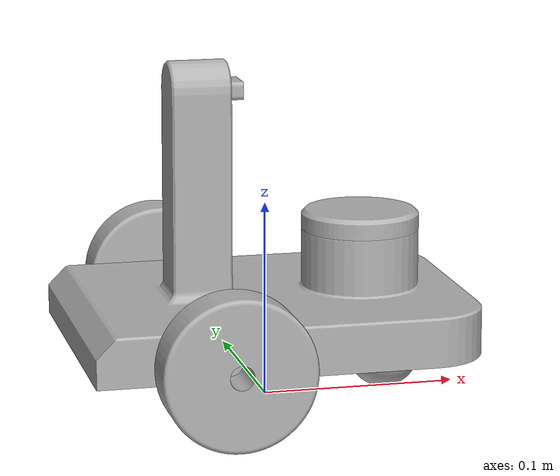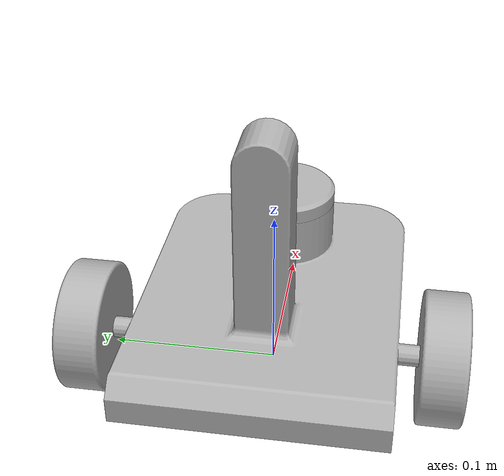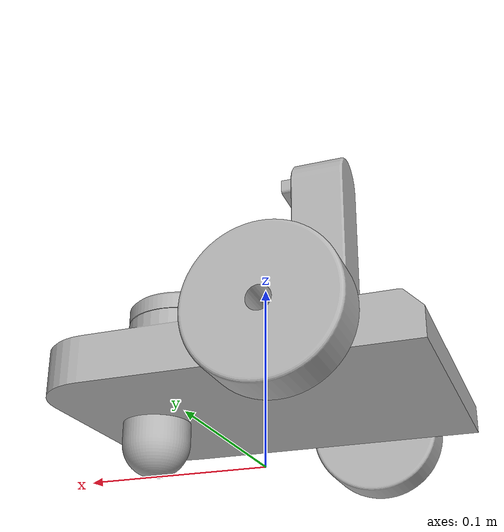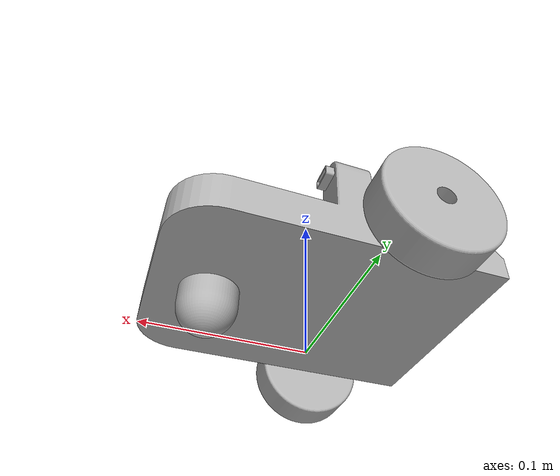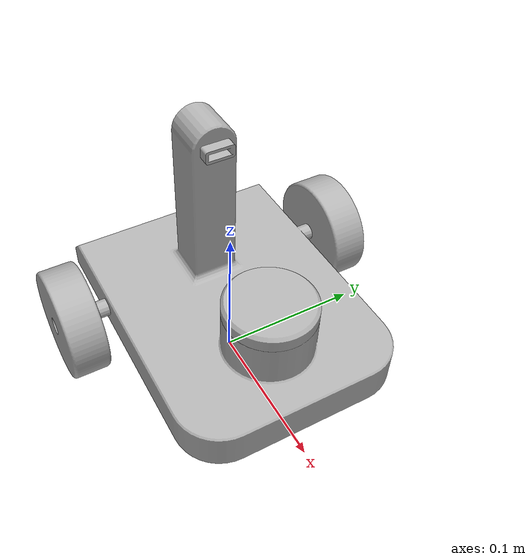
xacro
<?xml version="1.0" ?>
<robot name="eic_bot" xmlns:xacro="http://www.ros.org/wiki/xacro">

<xacro:include filename="$(find eic_bot_description)/urdf/materials.xacro" />
<xacro:include filename="$(find eic_bot_description)/urdf/eic_bot.trans" />
<xacro:include filename="$(find eic_bot_description)/urdf/eic_bot.gazebo" />
<link name="base_link">
  <inertial>
    <origin xyz="0.000294157102495685 2.947535498460932e-17 0.052485340668322555" rpy="0 0 0"/>
    <mass value="0.9812241966714506"/>
    <inertia ixx="0.002167" iyy="0.003572" izz="0.004353" ixy="-0.0" iyz="0.0" ixz="0.000149"/>
  </inertial>
  <visual>
    <origin xyz="0 0 0" rpy="0 0 0"/>
    <geometry>
      <mesh filename="package://eic_bot_description/meshes/base_link.stl" scale="0.001 0.001 0.001"/>
    </geometry>
    <material name="silver"/>
  </visual>
  <collision>
    <origin xyz="0 0 0" rpy="0 0 0"/>
    <geometry>
      <mesh filename="package://eic_bot_description/meshes/base_link.stl" scale="0.001 0.001 0.001"/>
    </geometry>
  </collision>
</link>

<link name="r_wheel_1">
  <inertial>
    <origin xyz="-1.6542323066914832e-14 -0.012499999999999997 6.938893903907228e-18" rpy="0 0 0"/>
    <mass value="0.09971412326008154"/>
    <inertia ixx="4.1e-05" iyy="7.2e-05" izz="4.1e-05" ixy="-0.0" iyz="0.0" ixz="0.0"/>
  </inertial>
  <visual>
    <origin xyz="0.037 0.087 -0.042" rpy="0 0 0"/>
    <geometry>
      <mesh filename="package://eic_bot_description/meshes/r_wheel_1.stl" scale="0.001 0.001 0.001"/>
    </geometry>
    <material name="silver"/>
  </visual>
  <collision>
    <origin xyz="0.037 0.087 -0.042" rpy="0 0 0"/>
    <geometry>
      <mesh filename="package://eic_bot_description/meshes/r_wheel_1.stl" scale="0.001 0.001 0.001"/>
    </geometry>
  </collision>
</link>

<link name="l_wheel__1">
  <inertial>
    <origin xyz="-1.6542323066914832e-14 0.012500000000000011 6.938893903907228e-18" rpy="0 0 0"/>
    <mass value="0.09971412326008154"/>
    <inertia ixx="4.1e-05" iyy="7.2e-05" izz="4.1e-05" ixy="-0.0" iyz="0.0" ixz="0.0"/>
  </inertial>
  <visual>
    <origin xyz="0.037 -0.087 -0.042" rpy="0 0 0"/>
    <geometry>
      <mesh filename="package://eic_bot_description/meshes/l_wheel__1.stl" scale="0.001 0.001 0.001"/>
    </geometry>
    <material name="silver"/>
  </visual>
  <collision>
    <origin xyz="0.037 -0.087 -0.042" rpy="0 0 0"/>
    <geometry>
      <mesh filename="package://eic_bot_description/meshes/l_wheel__1.stl" scale="0.001 0.001 0.001"/>
    </geometry>
  </collision>
</link>

<link name="cam_1">
  <inertial>
    <origin xyz="0.00347757201957773 6.290535465421874e-18 0.0" rpy="0 0 0"/>
    <mass value="0.0009318725889462407"/>
    <inertia ixx="0.0" iyy="0.0" izz="0.0" ixy="0.0" iyz="0.0" ixz="0.0"/>
  </inertial>
  <visual>
    <origin xyz="0.02 -0.0 -0.1595" rpy="0 0 0"/>
    <geometry>
      <mesh filename="package://eic_bot_description/meshes/cam_1.stl" scale="0.001 0.001 0.001"/>
    </geometry>
    <material name="silver"/>
  </visual>
  <collision>
    <origin xyz="0.02 -0.0 -0.1595" rpy="0 0 0"/>
    <geometry>
      <mesh filename="package://eic_bot_description/meshes/cam_1.stl" scale="0.001 0.001 0.001"/>
    </geometry>
  </collision>
</link>

<link name="lidar_1">
  <inertial>
    <origin xyz="6.938893903907228e-18 5.092452206886448e-18 0.00494280996697688" rpy="0 0 0"/>
    <mass value="0.036835550854458755"/>
    <inertia ixx="8e-06" iyy="8e-06" izz="1.6e-05" ixy="0.0" iyz="-0.0" ixz="0.0"/>
  </inertial>
  <visual>
    <origin xyz="-0.05 -0.0 -0.0845" rpy="0 0 0"/>
    <geometry>
      <mesh filename="package://eic_bot_description/meshes/lidar_1.stl" scale="0.001 0.001 0.001"/>
    </geometry>
    <material name="silver"/>
  </visual>
  <collision>
    <origin xyz="-0.05 -0.0 -0.0845" rpy="0 0 0"/>
    <geometry>
      <mesh filename="package://eic_bot_description/meshes/lidar_1.stl" scale="0.001 0.001 0.001"/>
    </geometry>
  </collision>
</link>

<link name="caster_1">
  <inertial>
    <origin xyz="-0.037000000000000005 -8.496525080399244e-18 -0.012074107142857143" rpy="0 0 0"/>
    <mass value="0.02659352945276006"/>
    <inertia ixx="3e-06" iyy="3e-06" izz="4e-06" ixy="-0.0" iyz="-0.0" ixz="0.0"/>
  </inertial>
  <visual>
    <origin xyz="-0.1 -0.0 -0.0295" rpy="0 0 0"/>
    <geometry>
      <mesh filename="package://eic_bot_description/meshes/caster_1.stl" scale="0.001 0.001 0.001"/>
    </geometry>
    <material name="silver"/>
  </visual>
  <collision>
    <origin xyz="-0.1 -0.0 -0.0295" rpy="0 0 0"/>
    <geometry>
      <mesh filename="package://eic_bot_description/meshes/caster_1.stl" scale="0.001 0.001 0.001"/>
    </geometry>
  </collision>
</link>

<joint name="r_joint" type="continuous">
  <origin xyz="-0.037 -0.087 0.042" rpy="0 0 0"/>
  <parent link="base_link"/>
  <child link="r_wheel_1"/>
  <axis xyz="0.0 -1.0 0.0"/>
</joint>

<joint name="l_joint" type="continuous">
  <origin xyz="-0.037 0.087 0.042" rpy="0 0 0"/>
  <parent link="base_link"/>
  <child link="l_wheel__1"/>
  <axis xyz="0.0 1.0 0.0"/>
</joint>

<joint name="cam_joint" type="fixed">
  <origin xyz="-0.02 0.0 0.1595" rpy="0 0 0"/>
  <parent link="base_link"/>
  <child link="cam_1"/>
</joint>

<joint name="lidar_joint" type="fixed">
  <origin xyz="0.05 0.0 0.0845" rpy="0 0 0"/>
  <parent link="base_link"/>
  <child link="lidar_1"/>
</joint>

<joint name="caster_joint" type="fixed">
  <origin xyz="0.1 0.0 0.0295" rpy="0 0 0"/>
  <parent link="base_link"/>
  <child link="caster_1"/>
</joint>

</robot>

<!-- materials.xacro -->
<robot name="eic_bot" xmlns:xacro="http://www.ros.org/wiki/xacro" >

<material name="silver">
  <color rgba="0.700 0.700 0.700 1.000"/>
</material>

</robot>

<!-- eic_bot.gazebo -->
<robot name="eic_bot" xmlns:xacro="http://www.ros.org/wiki/xacro" >

<xacro:property name="body_color" value="Gazebo/Silver" />

<gazebo>
  <plugin name="control" filename="libgazebo_ros_control.so"/>
</gazebo>
<gazebo reference="base_link">
  <material>${body_color}</material>
  <mu1>0.2</mu1>
  <mu2>0.2</mu2>
  <selfCollide>true</selfCollide>
  <gravity>true</gravity>
</gazebo>

<gazebo reference="r_wheel_1">
  <material>${body_color}</material>
  <mu1>0.2</mu1>
  <mu2>0.2</mu2>
  <selfCollide>true</selfCollide>
</gazebo>

<gazebo reference="l_wheel__1">
  <material>${body_color}</material>
  <mu1>0.2</mu1>
  <mu2>0.2</mu2>
  <selfCollide>true</selfCollide>
</gazebo>

<gazebo reference="cam_1">
  <material>${body_color}</material>
  <mu1>0.2</mu1>
  <mu2>0.2</mu2>
  <selfCollide>true</selfCollide>
</gazebo>

<gazebo reference="lidar_1">
  <material>${body_color}</material>
  <mu1>0.2</mu1>
  <mu2>0.2</mu2>
  <selfCollide>true</selfCollide>
</gazebo>

<gazebo reference="caster_1">
  <material>${body_color}</material>
  <mu1>0.2</mu1>
  <mu2>0.2</mu2>
  <selfCollide>true</selfCollide>
</gazebo>

</robot>
